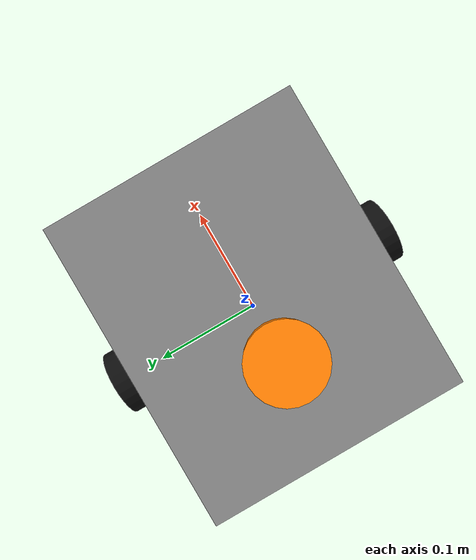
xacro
<?xml version="1.0"?>
<robot name="diffbot" xmlns:xacro="http://www.ros.org/wiki/xacro">

  <!-- ============================================================
       Configurable frame names (override with xacro args at launch)
       ============================================================ -->
  <xacro:arg name="base_frame" default="base_link"/>
  <xacro:arg name="tracking_frame" default="imu_tracking"/>
  <xacro:arg name="imu_frame" default="gyro_link"/>
  <xacro:arg name="laser_frame" default="laser"/>
  <xacro:arg name="use_sim" default="false"/>
  <xacro:arg name="laser_yaw" default="3.141592653589793"/>
  <xacro:property name="base_frame" value="$(arg base_frame)"/>
  <xacro:property name="tracking_frame" value="$(arg tracking_frame)"/>
  <xacro:property name="imu_frame" value="$(arg imu_frame)"/>
  <xacro:property name="laser_frame" value="$(arg laser_frame)"/>
  <xacro:property name="laser_yaw" value="$(arg laser_yaw)"/>

  <!-- ============================================================
       Configurable physical dimensions
       ============================================================ -->
  <xacro:property name="chassis_length" value="0.30"/>
  <xacro:property name="chassis_width" value="0.25"/>
  <xacro:property name="chassis_height" value="0.10"/>
  <xacro:property name="chassis_mass" value="5.0"/>

  <xacro:property name="wheel_radius" value="0.033"/>
  <xacro:property name="wheel_width" value="0.02"/>
  <xacro:property name="wheel_separation" value="0.288"/>
  <xacro:property name="wheel_mass" value="0.5"/>

  <xacro:property name="caster_radius" value="0.015"/>

  <xacro:property name="lidar_radius" value="0.035"/>
  <xacro:property name="lidar_height" value="0.04"/>
  <!-- Measured sensor geometry. H30 is 50 mm above base origin. The LiDAR
       is 52 mm behind and 40 mm above the H30. -->
  <xacro:property name="imu_mount_z" value="0.050"/>
  <xacro:property name="lidar_from_imu_x" value="-0.052"/>
  <!-- gyro_link has down-positive Z because the H30 is installed FRD. -->
  <xacro:property name="lidar_from_imu_z" value="-0.040"/>

  <material name="grey">
    <color rgba="0.5 0.5 0.5 1.0"/>
  </material>
  <material name="black">
    <color rgba="0.05 0.05 0.05 1.0"/>
  </material>
  <material name="orange">
    <color rgba="1.0 0.5 0.0 1.0"/>
  </material>

  <link name="${base_frame}">
    <visual>
      <origin xyz="0 0 0" rpy="0 0 0"/>
      <geometry>
        <box size="${chassis_length} ${chassis_width} ${chassis_height}"/>
      </geometry>
      <material name="grey"/>
    </visual>
    <collision>
      <origin xyz="0 0 0" rpy="0 0 0"/>
      <geometry>
        <box size="${chassis_length} ${chassis_width} ${chassis_height}"/>
      </geometry>
    </collision>
    <inertial>
      <mass value="${chassis_mass}"/>
      <origin xyz="0 0 0" rpy="0 0 0"/>
      <inertia ixx="0.05" ixy="0.0" ixz="0.0" iyy="0.08" iyz="0.0" izz="0.10"/>
    </inertial>
  </link>

  <xacro:macro name="wheel" params="prefix reflect">
    <link name="${prefix}_wheel_link">
      <visual>
        <origin xyz="0 0 0" rpy="${pi/2} 0 0"/>
        <geometry>
          <cylinder radius="${wheel_radius}" length="${wheel_width}"/>
        </geometry>
        <material name="black"/>
      </visual>
      <collision>
        <origin xyz="0 0 0" rpy="${pi/2} 0 0"/>
        <geometry>
          <cylinder radius="${wheel_radius}" length="${wheel_width}"/>
        </geometry>
      </collision>
      <inertial>
        <mass value="${wheel_mass}"/>
        <origin xyz="0 0 0" rpy="0 0 0"/>
        <inertia ixx="0.001" ixy="0.0" ixz="0.0" iyy="0.001" iyz="0.0" izz="0.001"/>
      </inertial>
    </link>
    <xacro:unless value="$(arg use_sim)">
      <joint name="${prefix}_wheel_joint" type="fixed">
        <parent link="${base_frame}"/>
        <child link="${prefix}_wheel_link"/>
        <origin xyz="0 ${reflect * wheel_separation/2} ${-wheel_radius}" rpy="0 0 0"/>
      </joint>
    </xacro:unless>
    <xacro:if value="$(arg use_sim)">
      <joint name="${prefix}_wheel_joint" type="continuous">
        <parent link="${base_frame}"/>
        <child link="${prefix}_wheel_link"/>
        <origin xyz="0 ${reflect * wheel_separation/2} ${-wheel_radius}" rpy="0 0 0"/>
        <!-- Positive joint velocity must roll the wheel toward base +X. -->
        <axis xyz="0 1 0"/>
        <dynamics damping="0.02" friction="0.0"/>
      </joint>
      <gazebo reference="${prefix}_wheel_link">
        <mu1>1.0</mu1>
        <mu2>1.0</mu2>
      </gazebo>
    </xacro:if>
  </xacro:macro>

  <xacro:wheel prefix="left" reflect="1"/>
  <xacro:wheel prefix="right" reflect="-1"/>

  <!-- Caster (visual only) -->
  <link name="caster_wheel_link">
    <visual>
      <geometry>
        <sphere radius="${caster_radius}"/>
      </geometry>
      <material name="black"/>
    </visual>
    <collision>
      <geometry>
        <sphere radius="${caster_radius}"/>
      </geometry>
    </collision>
    <inertial>
      <mass value="0.1"/>
      <origin xyz="0 0 0" rpy="0 0 0"/>
      <inertia ixx="0.0001" ixy="0.0" ixz="0.0" iyy="0.0001" iyz="0.0" izz="0.0001"/>
    </inertial>
  </link>
  <xacro:unless value="$(arg use_sim)">
    <joint name="caster_wheel_joint" type="fixed">
      <parent link="${base_frame}"/>
      <child link="caster_wheel_link"/>
      <origin xyz="${-chassis_length/2 + caster_radius} 0 ${-wheel_radius + caster_radius}" rpy="0 0 0"/>
    </joint>
  </xacro:unless>
  <xacro:if value="$(arg use_sim)">
    <joint name="caster_wheel_joint" type="fixed">
      <parent link="${base_frame}"/>
      <child link="caster_wheel_link"/>
      <origin xyz="${-chassis_length/2 + caster_radius} 0 ${-2*wheel_radius + caster_radius}" rpy="0 0 0"/>
    </joint>
  </xacro:if>

  <xacro:if value="$(arg use_sim)">
    <!-- The display-only hardware caster is above the wheel contact plane.
         Simulation lowers the full caster link to support the base. -->
    <gazebo reference="caster_wheel_link">
      <mu1>0.001</mu1>
      <mu2>0.001</mu2>
    </gazebo>
  </xacro:if>

  <!-- Cartographer requires its tracking-frame origin to be colocated with
       the IMU. Keep that frame FLU, then express the installed H30 FRD axes
       as a zero-translation roll-pi child. -->
  <link name="${tracking_frame}"/>
  <joint name="imu_mount_joint" type="fixed">
    <parent link="${base_frame}"/>
    <child link="${tracking_frame}"/>
    <origin xyz="0 0 ${imu_mount_z}" rpy="0 0 0"/>
  </joint>

  <link name="${imu_frame}"/>
  <joint name="imu_axes_joint" type="fixed">
    <parent link="${tracking_frame}"/>
    <child link="${imu_frame}"/>
    <origin xyz="0 0 0" rpy="${pi} 0 0"/>
  </joint>

  <!-- ============================================================
       2D LiDAR: gyro_link -> laser (fixed, robot_state_publisher)
       ============================================================ -->
  <link name="${laser_frame}">
    <visual>
      <origin xyz="0 0 0" rpy="0 0 0"/>
      <geometry>
        <cylinder radius="${lidar_radius}" length="${lidar_height}"/>
      </geometry>
      <material name="orange"/>
    </visual>
    <collision>
      <origin xyz="0 0 0" rpy="0 0 0"/>
      <geometry>
        <cylinder radius="${lidar_radius}" length="${lidar_height}"/>
      </geometry>
    </collision>
    <inertial>
      <mass value="0.1"/>
      <origin xyz="0 0 0" rpy="0 0 0"/>
      <inertia ixx="0.0001" ixy="0.0" ixz="0.0" iyy="0.0001" iyz="0.0" izz="0.0001"/>
    </inertial>
  </link>

  <joint name="laser_joint" type="fixed">
    <parent link="${imu_frame}"/>
    <child link="${laser_frame}"/>
    <!-- In the FRD parent, physically upward is -Z. rpy=(pi,0,-yaw)
         composes with base->gyro roll pi, restoring an FLU laser frame. -->
    <origin xyz="${lidar_from_imu_x} 0 ${lidar_from_imu_z}"
            rpy="${pi} 0 ${-laser_yaw}"/>
  </joint>

  <xacro:if value="$(arg use_sim)">
    <gazebo reference="${imu_frame}">
      <sensor name="imu_sensor" type="imu">
        <always_on>true</always_on>
        <update_rate>100</update_rate>
        <topic>/imu_data_ros</topic>
        <gz_frame_id>${imu_frame}</gz_frame_id>
        <imu>
          <angular_velocity>
            <x><noise type="gaussian"><mean>0.0</mean><stddev>0.002</stddev></noise></x>
            <y><noise type="gaussian"><mean>0.0</mean><stddev>0.002</stddev></noise></y>
            <z><noise type="gaussian"><mean>0.0</mean><stddev>0.002</stddev></noise></z>
          </angular_velocity>
          <linear_acceleration>
            <x><noise type="gaussian"><mean>0.0</mean><stddev>0.02</stddev></noise></x>
            <y><noise type="gaussian"><mean>0.0</mean><stddev>0.02</stddev></noise></y>
            <z><noise type="gaussian"><mean>0.0</mean><stddev>0.02</stddev></noise></z>
          </linear_acceleration>
        </imu>
      </sensor>
    </gazebo>

    <gazebo reference="${laser_frame}">
      <sensor name="lidar_sensor" type="gpu_lidar">
        <always_on>true</always_on>
        <visualize>true</visualize>
        <update_rate>10</update_rate>
        <topic>/scan</topic>
        <gz_frame_id>${laser_frame}</gz_frame_id>
        <lidar>
          <scan>
            <horizontal>
              <samples>720</samples>
              <resolution>1</resolution>
              <min_angle>-${pi}</min_angle>
              <max_angle>${pi}</max_angle>
            </horizontal>
          </scan>
          <range>
            <min>0.15</min>
            <max>8.0</max>
            <resolution>0.01</resolution>
          </range>
          <noise>
            <type>gaussian</type>
            <mean>0.0</mean>
            <stddev>0.005</stddev>
          </noise>
        </lidar>
      </sensor>
    </gazebo>

    <gazebo>
      <plugin filename="gz-sim-diff-drive-system"
              name="gz::sim::systems::DiffDrive">
        <left_joint>left_wheel_joint</left_joint>
        <right_joint>right_wheel_joint</right_joint>
        <wheel_separation>${wheel_separation}</wheel_separation>
        <wheel_radius>${wheel_radius}</wheel_radius>
        <topic>/cmd_vel</topic>
        <odom_topic>/odom/raw</odom_topic>
        <tf_topic>/sim/odom_tf</tf_topic>
        <frame_id>odom</frame_id>
        <child_frame_id>${base_frame}</child_frame_id>
        <odom_publish_frequency>50</odom_publish_frequency>
        <max_linear_velocity>0.8</max_linear_velocity>
        <min_linear_velocity>-0.8</min_linear_velocity>
        <max_angular_velocity>3.0</max_angular_velocity>
        <min_angular_velocity>-3.0</min_angular_velocity>
        <max_linear_acceleration>0.8</max_linear_acceleration>
        <min_linear_acceleration>-0.8</min_linear_acceleration>
        <max_angular_acceleration>2.0</max_angular_acceleration>
        <min_angular_acceleration>-2.0</min_angular_acceleration>
      </plugin>

      <plugin filename="gz-sim-joint-state-publisher-system"
              name="gz::sim::systems::JointStatePublisher">
        <topic>/joint_states</topic>
        <update_rate>30</update_rate>
      </plugin>
    </gazebo>
  </xacro:if>

</robot>
